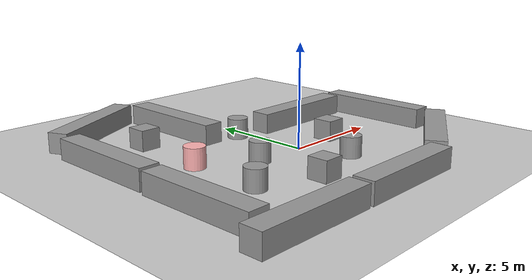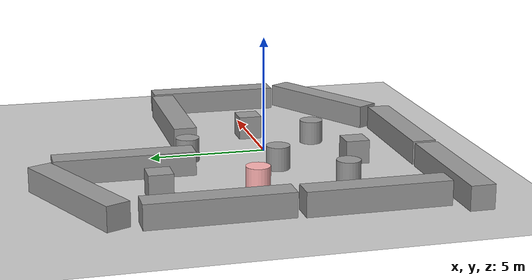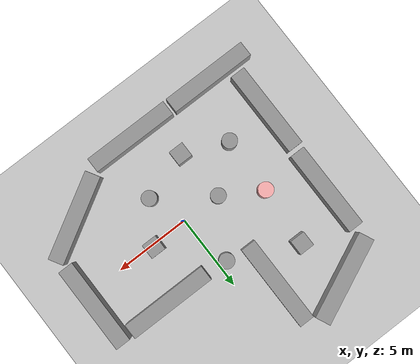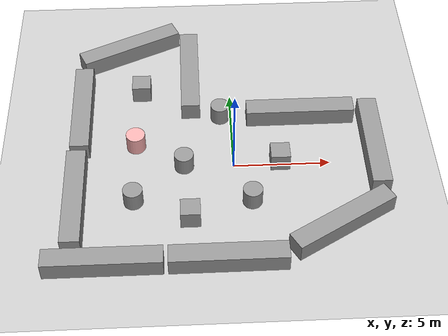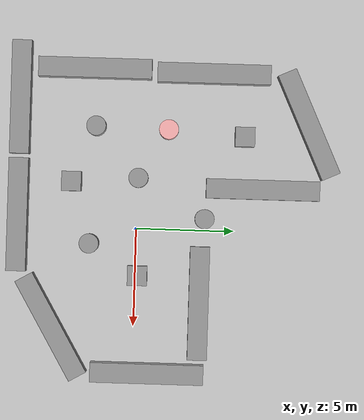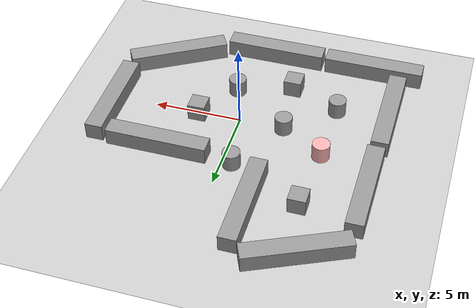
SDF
<sdf version="1.7">
 <world name="default">
  <light name="sun" type="directional">
   <pose>0 0 10 0 -0 0</pose>
   <diffuse>0.8 0.8 0.8 1</diffuse>
   <specular>0.2 0.2 0.2 1</specular>
   <attenuation>
    <range>1000</range>
    <constant>0.9</constant>
    <linear>0.01</linear>
    <quadratic>0.001</quadratic>
   </attenuation>
   <direction>-0.5 0.1 -0.9</direction>
   <spot><inner_angle>0</inner_angle><outer_angle>0</outer_angle><falloff>0</falloff></spot>
  </light>
  <model name="ground_plane">
   <static>1</static>
   <link name="link">
    <collision name="collision">
     <geometry><plane><normal>0 0 1</normal><size>100 100</size></plane></geometry>
     <surface><friction><ode><mu>100</mu><mu2>50</mu2></ode></friction></surface>
    </collision>
    <visual name="visual">
     <cast_shadows>0</cast_shadows>
     <geometry><plane><normal>0 0 1</normal><size>100 100</size></plane></geometry>
     <material>
      <script><uri>file://media/materials/scripts/gazebo.material</uri><name>Gazebo/Grey</name></script>
     </material>
    </visual>
   </link>
  </model>
  <gravity>0 0 -9.8</gravity>
  <magnetic_field>6e-06 2.3e-05 -4.2e-05</magnetic_field>
  <atmosphere type="adiabatic"/>
  <physics type="ode">
   <max_step_size>0.001</max_step_size>
   <real_time_factor>1</real_time_factor>
   <real_time_update_rate>1000</real_time_update_rate>
  </physics>
  <scene><ambient>0.4 0.4 0.4 1</ambient><background>0.7 0.7 0.7 1</background><shadows>1</shadows></scene>
  <spherical_coordinates>
   <surface_model>EARTH_WGS84</surface_model>
   <latitude_deg>0</latitude_deg>
   <longitude_deg>0</longitude_deg>
   <elevation>0</elevation>
   <heading_deg>0</heading_deg>
  </spherical_coordinates>
  <model name="unit_cylinder">
   <pose>-2.59177 0.056845 0.499992 -3e-06 -4e-06 -0</pose>
   <link name="link">
    <inertial>
     <mass>1</mass>
     <inertia><ixx>0.145833</ixx><ixy>0</ixy><ixz>0</ixz><iyy>0.145833</iyy><iyz>0</iyz><izz>0.125</izz></inertia>
    </inertial>
    <collision name="collision">
     <geometry><cylinder><radius>0.5</radius><length>1</length></cylinder></geometry>
    </collision>
    <visual name="visual">
     <geometry><cylinder><radius>0.5</radius><length>1</length></cylinder></geometry>
     <material>
      <script><name>Gazebo/Grey</name><uri>file://media/materials/scripts/gazebo.material</uri></script>
     </material>
    </visual>
   </link>
  </model>
  <model name="unit_box">
   <pose>-2.17111 6.41267 0.495932 0.001409 -0 -6.9e-05</pose>
   <link name="link">
    <inertial>
     <mass>1</mass>
     <inertia>
      <ixx>0.166667</ixx>
      <ixy>0</ixy>
      <ixz>0</ixz>
      <iyy>0.166667</iyy>
      <iyz>0</iyz>
      <izz>0.166667</izz>
     </inertia>
    </inertial>
    <collision name="collision"><geometry><box><size>1 5.77537 1</size></box></geometry></collision>
    <visual name="visual">
     <geometry><box><size>1 5.77537 1</size></box></geometry>
     <material>
      <script><name>Gazebo/Grey</name><uri>file://media/materials/scripts/gazebo.material</uri></script>
     </material>
    </visual>
   </link>
  </model>
  <model name="unit_box_0">
   <pose>-4.8361 5.42533 0.5 -0 -0 -0</pose>
   <link name="link">
    <inertial>
     <mass>1</mass>
     <inertia>
      <ixx>0.166667</ixx>
      <ixy>0</ixy>
      <ixz>0</ixz>
      <iyy>0.166667</iyy>
      <iyz>0</iyz>
      <izz>0.166667</izz>
     </inertia>
    </inertial>
    <collision name="collision"><geometry><box><size>1 1 1</size></box></geometry></collision>
    <visual name="visual">
     <geometry><box><size>1 1 1</size></box></geometry>
     <material>
      <script><name>Gazebo/Grey</name><uri>file://media/materials/scripts/gazebo.material</uri></script>
     </material>
    </visual>
   </link>
  </model>
  <model name="unit_box_1">
   <pose>2.39416 0.1371 0.499995 -1e-05 -0 -0</pose>
   <link name="link">
    <inertial>
     <mass>1</mass>
     <inertia>
      <ixx>0.166667</ixx>
      <ixy>0</ixy>
      <ixz>0</ixz>
      <iyy>0.166667</iyy>
      <iyz>0</iyz>
      <izz>0.166667</izz>
     </inertia>
    </inertial>
    <collision name="collision"><geometry><box><size>1 1 1</size></box></geometry></collision>
    <visual name="visual">
     <geometry><box><size>1 1 1</size></box></geometry>
     <material>
      <script><name>Gazebo/Grey</name><uri>file://media/materials/scripts/gazebo.material</uri></script>
     </material>
    </visual>
   </link>
  </model>
  <model name="unit_box_2">
   <pose>-2.32911 -3.35241 0.499995 0 1e-05 0</pose>
   <link name="link">
    <inertial>
     <mass>1</mass>
     <inertia>
      <ixx>0.166667</ixx>
      <ixy>0</ixy>
      <ixz>0</ixz>
      <iyy>0.166667</iyy>
      <iyz>0</iyz>
      <izz>0.166667</izz>
     </inertia>
    </inertial>
    <collision name="collision"><geometry><box><size>1 1 1</size></box></geometry></collision>
    <visual name="visual">
     <geometry><box><size>1 1 1</size></box></geometry>
     <material>
      <script><name>Gazebo/Grey</name><uri>file://media/materials/scripts/gazebo.material</uri></script>
     </material>
    </visual>
   </link>
  </model>
  <model name="unit_cylinder_1">
   <pose>0.819915 -2.37273 0.499998 3e-06 -2e-06 0</pose>
   <link name="link">
    <inertial>
     <mass>1</mass>
     <inertia><ixx>0.145833</ixx><ixy>0</ixy><ixz>0</ixz><iyy>0.145833</iyy><iyz>0</iyz><izz>0.125</izz></inertia>
    </inertial>
    <collision name="collision">
     <geometry><cylinder><radius>0.5</radius><length>1</length></cylinder></geometry>
    </collision>
    <visual name="visual">
     <geometry><cylinder><radius>0.5</radius><length>1</length></cylinder></geometry>
     <material>
      <script><name>Gazebo/Grey</name><uri>file://media/materials/scripts/gazebo.material</uri></script>
     </material>
    </visual>
   </link>
  </model>
  <model name="unit_cylinder_2">
   <pose>-5.18503 -2.16389 0.499992 -3e-06 2e-06 0</pose>
   <link name="link">
    <inertial>
     <mass>1</mass>
     <inertia><ixx>0.145833</ixx><ixy>0</ixy><ixz>0</ixz><iyy>0.145833</iyy><iyz>0</iyz><izz>0.125</izz></inertia>
    </inertial>
    <collision name="collision">
     <geometry><cylinder><radius>0.5</radius><length>1</length></cylinder></geometry>
    </collision>
    <visual name="visual">
     <geometry><cylinder><radius>0.5</radius><length>1</length></cylinder></geometry>
     <material>
      <script><name>Gazebo/Grey</name><uri>file://media/materials/scripts/gazebo.material</uri></script>
     </material>
    </visual>
   </link>
  </model>
  <model name="unit_box_clone">
   <pose>3.7117 3.30112 0.495932 0.001409 -0 -1.57071</pose>
   <link name="link">
    <inertial>
     <mass>1</mass>
     <inertia>
      <ixx>0.166667</ixx>
      <ixy>0</ixy>
      <ixz>0</ixz>
      <iyy>0.166667</iyy>
      <iyz>0</iyz>
      <izz>0.166667</izz>
     </inertia>
    </inertial>
    <collision name="collision"><geometry><box><size>1 5.77537 1</size></box></geometry></collision>
    <visual name="visual">
     <geometry><box><size>1 5.77537 1</size></box></geometry>
     <material>
      <script><name>Gazebo/Grey</name><uri>file://media/materials/scripts/gazebo.material</uri></script>
     </material>
    </visual>
   </link>
  </model>
  <model name="unit_box_clone_0">
   <pose>7.36761 0.756052 0.495932 0.001409 -0 -6.9e-05</pose>
   <link name="link">
    <inertial>
     <mass>1</mass>
     <inertia>
      <ixx>0.166667</ixx>
      <ixy>0</ixy>
      <ixz>0</ixz>
      <iyy>0.166667</iyy>
      <iyz>0</iyz>
      <izz>0.166667</izz>
     </inertia>
    </inertial>
    <collision name="collision"><geometry><box><size>1 5.77537 1</size></box></geometry></collision>
    <visual name="visual">
     <geometry><box><size>1 5.77537 1</size></box></geometry>
     <material>
      <script><name>Gazebo/Grey</name><uri>file://media/materials/scripts/gazebo.material</uri></script>
     </material>
    </visual>
   </link>
  </model>
  <model name="unit_box_clone_1">
   <pose>5.11906 -4.19449 0.499962 1.3e-05 -0 -1.04616</pose>
   <link name="link">
    <inertial>
     <mass>1</mass>
     <inertia>
      <ixx>0.166667</ixx>
      <ixy>0</ixy>
      <ixz>0</ixz>
      <iyy>0.166667</iyy>
      <iyz>0</iyz>
      <izz>0.166667</izz>
     </inertia>
    </inertial>
    <collision name="collision"><geometry><box><size>1 5.77537 1</size></box></geometry></collision>
    <visual name="visual">
     <geometry><box><size>1 5.77537 1</size></box></geometry>
     <material>
      <script><name>Gazebo/Grey</name><uri>file://media/materials/scripts/gazebo.material</uri></script>
     </material>
    </visual>
   </link>
  </model>
  <model name="unit_box_clone_clone">
   <pose>-0.560082 -6.05582 0.495932 0.001409 -0 -1.57071</pose>
   <link name="link">
    <inertial>
     <mass>1</mass>
     <inertia>
      <ixx>0.166667</ixx>
      <ixy>0</ixy>
      <ixz>0</ixz>
      <iyy>0.166667</iyy>
      <iyz>0</iyz>
      <izz>0.166667</izz>
     </inertia>
    </inertial>
    <collision name="collision"><geometry><box><size>1 5.77537 1</size></box></geometry></collision>
    <visual name="visual">
     <geometry><box><size>1 5.77537 1</size></box></geometry>
     <material>
      <script><name>Gazebo/Grey</name><uri>file://media/materials/scripts/gazebo.material</uri></script>
     </material>
    </visual>
   </link>
  </model>
  <model name="unit_box_clone_clone_0">
   <pose>-6.5537 -6.05218 0.495932 -0.001409 0 -1.57071</pose>
   <link name="link">
    <inertial>
     <mass>1</mass>
     <inertia>
      <ixx>0.166667</ixx>
      <ixy>0</ixy>
      <ixz>0</ixz>
      <iyy>0.166667</iyy>
      <iyz>0</iyz>
      <izz>0.166667</izz>
     </inertia>
    </inertial>
    <collision name="collision"><geometry><box><size>1 5.77537 1</size></box></geometry></collision>
    <visual name="visual">
     <geometry><box><size>1 5.77537 1</size></box></geometry>
     <material>
      <script><name>Gazebo/Grey</name><uri>file://media/materials/scripts/gazebo.material</uri></script>
     </material>
    </visual>
   </link>
  </model>
  <model name="unit_box_clone_0_clone">
   <pose>-8.13081 -2.29945 0.495932 0.001409 -0 6.9e-05</pose>
   <link name="link">
    <inertial>
     <mass>1</mass>
     <inertia>
      <ixx>0.166667</ixx>
      <ixy>0</ixy>
      <ixz>0</ixz>
      <iyy>0.166667</iyy>
      <iyz>0</iyz>
      <izz>0.166667</izz>
     </inertia>
    </inertial>
    <collision name="collision"><geometry><box><size>1 5.77537 1</size></box></geometry></collision>
    <visual name="visual">
     <geometry><box><size>1 5.77537 1</size></box></geometry>
     <material>
      <script><name>Gazebo/Grey</name><uri>file://media/materials/scripts/gazebo.material</uri></script>
     </material>
    </visual>
   </link>
  </model>
  <model name="unit_box_clone_0_clone_0">
   <pose>-8.01537 3.7658 0.495932 0.001409 -0 6.9e-05</pose>
   <link name="link">
    <inertial>
     <mass>1</mass>
     <inertia>
      <ixx>0.166667</ixx>
      <ixy>0</ixy>
      <ixz>0</ixz>
      <iyy>0.166667</iyy>
      <iyz>0</iyz>
      <izz>0.166667</izz>
     </inertia>
    </inertial>
    <collision name="collision"><geometry><box><size>1 5.77537 1</size></box></geometry></collision>
    <visual name="visual">
     <geometry><box><size>1 5.77537 1</size></box></geometry>
     <material>
      <script><name>Gazebo/Grey</name><uri>file://media/materials/scripts/gazebo.material</uri></script>
     </material>
    </visual>
   </link>
  </model>
  <model name="unit_box_clone_0_clone_1">
   <pose>-5.56 8.66403 0.499983 -7e-06 -4e-06 -1.1435</pose>
   <link name="link">
    <inertial>
     <mass>1</mass>
     <inertia>
      <ixx>0.166667</ixx>
      <ixy>0</ixy>
      <ixz>0</ixz>
      <iyy>0.166667</iyy>
      <iyz>0</iyz>
      <izz>0.166667</izz>
     </inertia>
    </inertial>
    <collision name="collision"><geometry><box><size>1 5.77537 1</size></box></geometry></collision>
    <visual name="visual">
     <geometry><box><size>1 5.77537 1</size></box></geometry>
     <material>
      <script><name>Gazebo/Grey</name><uri>file://media/materials/scripts/gazebo.material</uri></script>
     </material>
    </visual>
   </link>
  </model>
  <model name="unit_cylinder_3">
   <pose>-0.59028 3.48596 0.499997 3e-06 4e-06 -0</pose>
   <link name="link">
    <inertial>
     <mass>1</mass>
     <inertia><ixx>0.145833</ixx><ixy>0</ixy><ixz>0</ixz><iyy>0.145833</iyy><iyz>0</iyz><izz>0.125</izz></inertia>
    </inertial>
    <collision name="collision">
     <geometry><cylinder><radius>0.5</radius><length>1</length></cylinder></geometry>
    </collision>
    <visual name="visual">
     <geometry><cylinder><radius>0.5</radius><length>1</length></cylinder></geometry>
     <material>
      <script><name>Gazebo/Grey</name><uri>file://media/materials/scripts/gazebo.material</uri></script>
     </material>
    </visual>
   </link>
  </model>
  <model name="unit_cylinder_0">
   <link name="link">
    <inertial>
     <mass>1</mass>
     <inertia><ixx>0.145833</ixx><ixy>0</ixy><ixz>0</ixz><iyy>0.145833</iyy><iyz>0</iyz><izz>0.125</izz></inertia>
    </inertial>
    <visual name="visual">
     <geometry><cylinder><radius>0.5</radius><length>1</length></cylinder></geometry>
     <material>
      <script><name>Gazebo/Grey</name><uri>file://media/materials/scripts/gazebo.material</uri></script>
      <shader type="pixel"><normal_map>__default__</normal_map></shader>
      <ambient>1 0 0 0</ambient>
      <diffuse>1 0.7 0.7 1</diffuse>
      <specular>0.01 0.01 0.01 1</specular>
      <emissive>0 0 0 1</emissive>
     </material>
    </visual>
    <collision name="collision">
     <geometry><cylinder><radius>0.5</radius><length>1</length></cylinder></geometry>
     <surface>
      <friction>
       <ode><mu>1</mu><mu2>1</mu2><fdir1>0 0 0</fdir1><slip1>0</slip1><slip2>0</slip2></ode>
       <torsional>
        <coefficient>1</coefficient>
        <patch_radius>0</patch_radius>
        <surface_radius>0</surface_radius>
        <use_patch_radius>1</use_patch_radius>
        <ode><slip>0</slip></ode>
       </torsional>
      </friction>
      <bounce><restitution_coefficient>0</restitution_coefficient><threshold>1e+06</threshold></bounce>
      <contact>
       <collide_without_contact>0</collide_without_contact>
       <collide_without_contact_bitmask>1</collide_without_contact_bitmask>
       <collide_bitmask>1</collide_bitmask>
       <ode>
        <soft_cfm>0</soft_cfm>
        <soft_erp>0.2</soft_erp>
        <kp>1e+13</kp>
        <kd>1</kd>
        <max_vel>0.01</max_vel>
        <min_depth>0</min_depth>
       </ode>
       <bullet>
        <split_impulse>1</split_impulse>
        <split_impulse_penetration_threshold>-0.01</split_impulse_penetration_threshold>
        <soft_cfm>0</soft_cfm>
        <soft_erp>0.2</soft_erp>
        <kp>1e+13</kp>
        <kd>1</kd>
       </bullet>
      </contact>
     </surface>
    </collision>
   </link>
   <static>0</static>
   <pose>-5.10149 1.54082 0.5 0 -0 0</pose>
  </model>
 </world>
</sdf>
